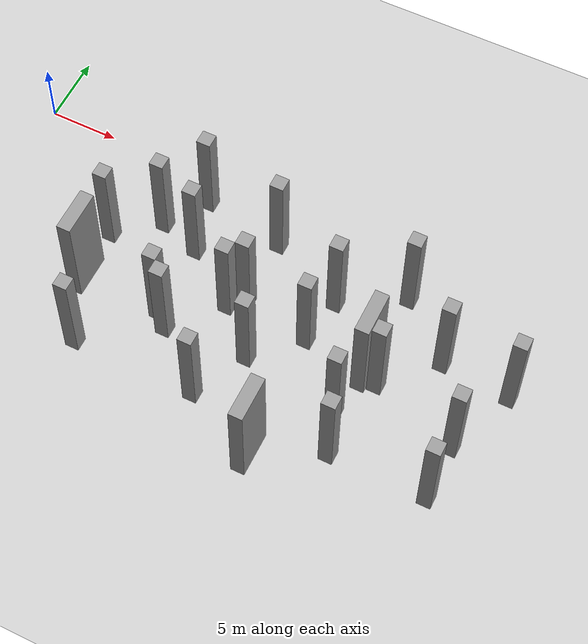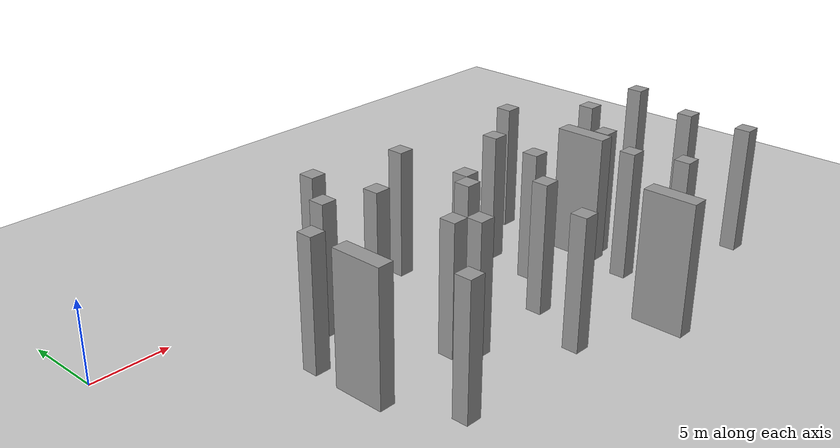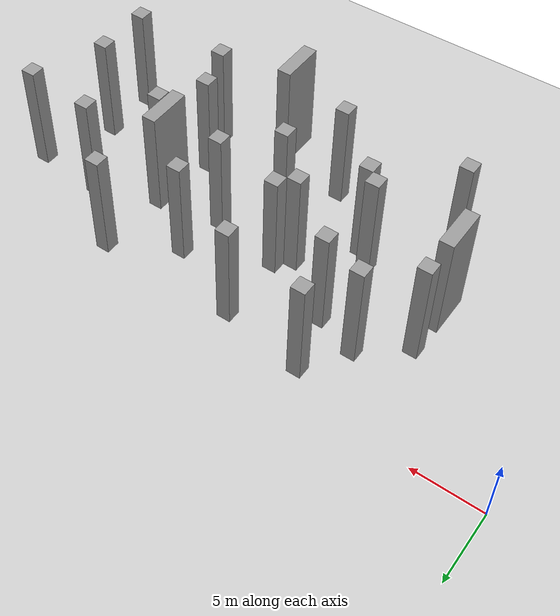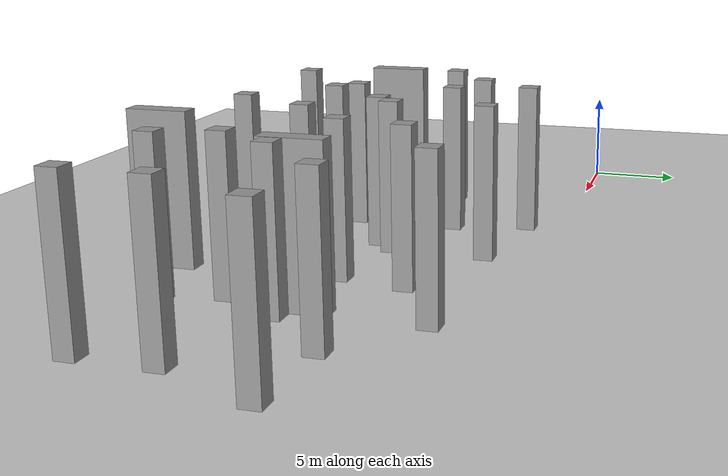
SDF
<sdf version="1.7">
 <world name="default">
  <model name="ground_plane">
   <static>1</static>
   <link name="link">
    <collision name="collision">
     <geometry><plane><normal>0 0 1</normal><size>100 100</size></plane></geometry>
     <surface>
      <contact><collide_bitmask>65535</collide_bitmask></contact>
      <friction><ode><mu>100</mu><mu2>50</mu2></ode></friction>
     </surface>
    </collision>
    <visual name="visual">
     <cast_shadows>0</cast_shadows>
     <geometry><plane><normal>0 0 1</normal><size>100 100</size></plane></geometry>
     <material>
      <script><uri>file://media/materials/scripts/gazebo.material</uri><name>Gazebo/Grey</name></script>
     </material>
    </visual>
   </link>
  </model>
  <model name="unit_box_static_clone_30">
   <link name="link">
    <inertial>
     <mass>1</mass>
     <inertia>
      <ixx>0.166667</ixx>
      <ixy>0</ixy>
      <ixz>0</ixz>
      <iyy>0.166667</iyy>
      <iyz>0</iyz>
      <izz>0.166667</izz>
     </inertia>
    </inertial>
    <visual name="visual">
     <geometry><box><size>1 1 8.00001</size></box></geometry>
     <material>
      <script><name>Gazebo/Grey</name><uri>file://media/materials/scripts/gazebo.material</uri></script>
      <shader type="pixel"/>
     </material>
    </visual>
    <collision name="collision">
     <geometry><box><size>1 1 8.00001</size></box></geometry>
     <surface>
      <friction>
       <ode><mu>1</mu><mu2>1</mu2><fdir1>0 0 0</fdir1><slip1>0</slip1><slip2>0</slip2></ode>
       <torsional>
        <coefficient>1</coefficient>
        <patch_radius>0</patch_radius>
        <surface_radius>0</surface_radius>
        <use_patch_radius>1</use_patch_radius>
        <ode><slip>0</slip></ode>
       </torsional>
      </friction>
      <bounce><restitution_coefficient>0</restitution_coefficient><threshold>1e+06</threshold></bounce>
      <contact>
       <collide_without_contact>0</collide_without_contact>
       <collide_without_contact_bitmask>1</collide_without_contact_bitmask>
       <collide_bitmask>1</collide_bitmask>
       <ode>
        <soft_cfm>0</soft_cfm>
        <soft_erp>0.2</soft_erp>
        <kp>1e+13</kp>
        <kd>1</kd>
        <max_vel>0.01</max_vel>
        <min_depth>0</min_depth>
       </ode>
       <bullet>
        <split_impulse>1</split_impulse>
        <split_impulse_penetration_threshold>-0.01</split_impulse_penetration_threshold>
        <soft_cfm>0</soft_cfm>
        <soft_erp>0.2</soft_erp>
        <kp>1e+13</kp>
        <kd>1</kd>
       </bullet>
      </contact>
     </surface>
    </collision>
   </link>
   <static>1</static>
   <pose>9 -7.40127 4 0 -0 0</pose>
  </model>
  <model name="unit_box_static_clone_42">
   <link name="link">
    <inertial>
     <mass>1</mass>
     <inertia>
      <ixx>0.166667</ixx>
      <ixy>0</ixy>
      <ixz>0</ixz>
      <iyy>0.166667</iyy>
      <iyz>0</iyz>
      <izz>0.166667</izz>
     </inertia>
    </inertial>
    <visual name="visual">
     <geometry><box><size>1 1 8.00001</size></box></geometry>
     <material>
      <script><name>Gazebo/Grey</name><uri>file://media/materials/scripts/gazebo.material</uri></script>
      <shader type="pixel"/>
     </material>
    </visual>
    <collision name="collision">
     <geometry><box><size>1 1 8.00001</size></box></geometry>
     <surface>
      <friction>
       <ode><mu>1</mu><mu2>1</mu2><fdir1>0 0 0</fdir1><slip1>0</slip1><slip2>0</slip2></ode>
       <torsional>
        <coefficient>1</coefficient>
        <patch_radius>0</patch_radius>
        <surface_radius>0</surface_radius>
        <use_patch_radius>1</use_patch_radius>
        <ode><slip>0</slip></ode>
       </torsional>
      </friction>
      <bounce><restitution_coefficient>0</restitution_coefficient><threshold>1e+06</threshold></bounce>
      <contact>
       <collide_without_contact>0</collide_without_contact>
       <collide_without_contact_bitmask>1</collide_without_contact_bitmask>
       <collide_bitmask>1</collide_bitmask>
       <ode>
        <soft_cfm>0</soft_cfm>
        <soft_erp>0.2</soft_erp>
        <kp>1e+13</kp>
        <kd>1</kd>
        <max_vel>0.01</max_vel>
        <min_depth>0</min_depth>
       </ode>
       <bullet>
        <split_impulse>1</split_impulse>
        <split_impulse_penetration_threshold>-0.01</split_impulse_penetration_threshold>
        <soft_cfm>0</soft_cfm>
        <soft_erp>0.2</soft_erp>
        <kp>1e+13</kp>
        <kd>1</kd>
       </bullet>
      </contact>
     </surface>
    </collision>
   </link>
   <static>1</static>
   <pose>14 -2 4 0 -0 0</pose>
  </model>
  <model name="unit_box_static_clone_44">
   <link name="link">
    <inertial>
     <mass>1</mass>
     <inertia>
      <ixx>0.166667</ixx>
      <ixy>0</ixy>
      <ixz>0</ixz>
      <iyy>0.166667</iyy>
      <iyz>0</iyz>
      <izz>0.166667</izz>
     </inertia>
    </inertial>
    <visual name="visual">
     <geometry><box><size>1 1 8.00001</size></box></geometry>
     <material>
      <script><name>Gazebo/Grey</name><uri>file://media/materials/scripts/gazebo.material</uri></script>
      <shader type="pixel"/>
     </material>
    </visual>
    <collision name="collision">
     <geometry><box><size>1 1 8.00001</size></box></geometry>
     <surface>
      <friction>
       <ode><mu>1</mu><mu2>1</mu2><fdir1>0 0 0</fdir1><slip1>0</slip1><slip2>0</slip2></ode>
       <torsional>
        <coefficient>1</coefficient>
        <patch_radius>0</patch_radius>
        <surface_radius>0</surface_radius>
        <use_patch_radius>1</use_patch_radius>
        <ode><slip>0</slip></ode>
       </torsional>
      </friction>
      <bounce><restitution_coefficient>0</restitution_coefficient><threshold>1e+06</threshold></bounce>
      <contact>
       <collide_without_contact>0</collide_without_contact>
       <collide_without_contact_bitmask>1</collide_without_contact_bitmask>
       <collide_bitmask>1</collide_bitmask>
       <ode>
        <soft_cfm>0</soft_cfm>
        <soft_erp>0.2</soft_erp>
        <kp>1e+13</kp>
        <kd>1</kd>
        <max_vel>0.01</max_vel>
        <min_depth>0</min_depth>
       </ode>
       <bullet>
        <split_impulse>1</split_impulse>
        <split_impulse_penetration_threshold>-0.01</split_impulse_penetration_threshold>
        <soft_cfm>0</soft_cfm>
        <soft_erp>0.2</soft_erp>
        <kp>1e+13</kp>
        <kd>1</kd>
       </bullet>
      </contact>
     </surface>
    </collision>
   </link>
   <static>1</static>
   <pose>20 -3 4 0 -0 0</pose>
  </model>
  <model name="unit_box_static_clone_53">
   <link name="link">
    <inertial>
     <mass>1</mass>
     <inertia>
      <ixx>0.166667</ixx>
      <ixy>0</ixy>
      <ixz>0</ixz>
      <iyy>0.166667</iyy>
      <iyz>0</iyz>
      <izz>0.166667</izz>
     </inertia>
    </inertial>
    <visual name="visual">
     <geometry><box><size>1 1 8.00001</size></box></geometry>
     <material>
      <script><name>Gazebo/Grey</name><uri>file://media/materials/scripts/gazebo.material</uri></script>
      <shader type="pixel"/>
     </material>
    </visual>
    <collision name="collision">
     <geometry><box><size>1 1 8.00001</size></box></geometry>
     <surface>
      <friction>
       <ode><mu>1</mu><mu2>1</mu2><fdir1>0 0 0</fdir1><slip1>0</slip1><slip2>0</slip2></ode>
       <torsional>
        <coefficient>1</coefficient>
        <patch_radius>0</patch_radius>
        <surface_radius>0</surface_radius>
        <use_patch_radius>1</use_patch_radius>
        <ode><slip>0</slip></ode>
       </torsional>
      </friction>
      <bounce><restitution_coefficient>0</restitution_coefficient><threshold>1e+06</threshold></bounce>
      <contact>
       <collide_without_contact>0</collide_without_contact>
       <collide_without_contact_bitmask>1</collide_without_contact_bitmask>
       <collide_bitmask>1</collide_bitmask>
       <ode>
        <soft_cfm>0</soft_cfm>
        <soft_erp>0.2</soft_erp>
        <kp>1e+13</kp>
        <kd>1</kd>
        <max_vel>0.01</max_vel>
        <min_depth>0</min_depth>
       </ode>
       <bullet>
        <split_impulse>1</split_impulse>
        <split_impulse_penetration_threshold>-0.01</split_impulse_penetration_threshold>
        <soft_cfm>0</soft_cfm>
        <soft_erp>0.2</soft_erp>
        <kp>1e+13</kp>
        <kd>1</kd>
       </bullet>
      </contact>
     </surface>
    </collision>
   </link>
   <static>1</static>
   <pose>25.5768 -5.51361 4 0 -0 0</pose>
  </model>
  <model name="unit_box_static_clone_54">
   <link name="link">
    <inertial>
     <mass>1</mass>
     <inertia>
      <ixx>0.166667</ixx>
      <ixy>0</ixy>
      <ixz>0</ixz>
      <iyy>0.166667</iyy>
      <iyz>0</iyz>
      <izz>0.166667</izz>
     </inertia>
    </inertial>
    <visual name="visual">
     <geometry><box><size>1 1 8.00001</size></box></geometry>
     <material>
      <script><name>Gazebo/Grey</name><uri>file://media/materials/scripts/gazebo.material</uri></script>
      <shader type="pixel"/>
     </material>
    </visual>
    <collision name="collision">
     <geometry><box><size>1 1 8.00001</size></box></geometry>
     <surface>
      <friction>
       <ode><mu>1</mu><mu2>1</mu2><fdir1>0 0 0</fdir1><slip1>0</slip1><slip2>0</slip2></ode>
       <torsional>
        <coefficient>1</coefficient>
        <patch_radius>0</patch_radius>
        <surface_radius>0</surface_radius>
        <use_patch_radius>1</use_patch_radius>
        <ode><slip>0</slip></ode>
       </torsional>
      </friction>
      <bounce><restitution_coefficient>0</restitution_coefficient><threshold>1e+06</threshold></bounce>
      <contact>
       <collide_without_contact>0</collide_without_contact>
       <collide_without_contact_bitmask>1</collide_without_contact_bitmask>
       <collide_bitmask>1</collide_bitmask>
       <ode>
        <soft_cfm>0</soft_cfm>
        <soft_erp>0.2</soft_erp>
        <kp>1e+13</kp>
        <kd>1</kd>
        <max_vel>0.01</max_vel>
        <min_depth>0</min_depth>
       </ode>
       <bullet>
        <split_impulse>1</split_impulse>
        <split_impulse_penetration_threshold>-0.01</split_impulse_penetration_threshold>
        <soft_cfm>0</soft_cfm>
        <soft_erp>0.2</soft_erp>
        <kp>1e+13</kp>
        <kd>1</kd>
       </bullet>
      </contact>
     </surface>
    </collision>
   </link>
   <static>1</static>
   <pose>20 -8 4 0 -0 0</pose>
  </model>
  <model name="unit_box_static_clone_55">
   <link name="link">
    <inertial>
     <mass>1</mass>
     <inertia>
      <ixx>0.166667</ixx>
      <ixy>0</ixy>
      <ixz>0</ixz>
      <iyy>0.166667</iyy>
      <iyz>0</iyz>
      <izz>0.166667</izz>
     </inertia>
    </inertial>
    <visual name="visual">
     <geometry><box><size>1 1 8.00001</size></box></geometry>
     <material>
      <script><name>Gazebo/Grey</name><uri>file://media/materials/scripts/gazebo.material</uri></script>
      <shader type="pixel"/>
     </material>
    </visual>
    <collision name="collision">
     <geometry><box><size>1 1 8.00001</size></box></geometry>
     <surface>
      <friction>
       <ode><mu>1</mu><mu2>1</mu2><fdir1>0 0 0</fdir1><slip1>0</slip1><slip2>0</slip2></ode>
       <torsional>
        <coefficient>1</coefficient>
        <patch_radius>0</patch_radius>
        <surface_radius>0</surface_radius>
        <use_patch_radius>1</use_patch_radius>
        <ode><slip>0</slip></ode>
       </torsional>
      </friction>
      <bounce><restitution_coefficient>0</restitution_coefficient><threshold>1e+06</threshold></bounce>
      <contact>
       <collide_without_contact>0</collide_without_contact>
       <collide_without_contact_bitmask>1</collide_without_contact_bitmask>
       <collide_bitmask>1</collide_bitmask>
       <ode>
        <soft_cfm>0</soft_cfm>
        <soft_erp>0.2</soft_erp>
        <kp>1e+13</kp>
        <kd>1</kd>
        <max_vel>0.01</max_vel>
        <min_depth>0</min_depth>
       </ode>
       <bullet>
        <split_impulse>1</split_impulse>
        <split_impulse_penetration_threshold>-0.01</split_impulse_penetration_threshold>
        <soft_cfm>0</soft_cfm>
        <soft_erp>0.2</soft_erp>
        <kp>1e+13</kp>
        <kd>1</kd>
       </bullet>
      </contact>
     </surface>
    </collision>
   </link>
   <static>1</static>
   <pose>12 -5 4 0 -0 0</pose>
  </model>
  <model name="unit_box_static_clone_56">
   <link name="link">
    <inertial>
     <mass>1</mass>
     <inertia>
      <ixx>0.166667</ixx>
      <ixy>0</ixy>
      <ixz>0</ixz>
      <iyy>0.166667</iyy>
      <iyz>0</iyz>
      <izz>0.166667</izz>
     </inertia>
    </inertial>
    <visual name="visual">
     <geometry><box><size>1 1 8.00001</size></box></geometry>
     <material>
      <script><name>Gazebo/Grey</name><uri>file://media/materials/scripts/gazebo.material</uri></script>
      <shader type="pixel"/>
     </material>
    </visual>
    <collision name="collision">
     <geometry><box><size>1 1 8.00001</size></box></geometry>
     <surface>
      <friction>
       <ode><mu>1</mu><mu2>1</mu2><fdir1>0 0 0</fdir1><slip1>0</slip1><slip2>0</slip2></ode>
       <torsional>
        <coefficient>1</coefficient>
        <patch_radius>0</patch_radius>
        <surface_radius>0</surface_radius>
        <use_patch_radius>1</use_patch_radius>
        <ode><slip>0</slip></ode>
       </torsional>
      </friction>
      <bounce><restitution_coefficient>0</restitution_coefficient><threshold>1e+06</threshold></bounce>
      <contact>
       <collide_without_contact>0</collide_without_contact>
       <collide_without_contact_bitmask>1</collide_without_contact_bitmask>
       <collide_bitmask>1</collide_bitmask>
       <ode>
        <soft_cfm>0</soft_cfm>
        <soft_erp>0.2</soft_erp>
        <kp>1e+13</kp>
        <kd>1</kd>
        <max_vel>0.01</max_vel>
        <min_depth>0</min_depth>
       </ode>
       <bullet>
        <split_impulse>1</split_impulse>
        <split_impulse_penetration_threshold>-0.01</split_impulse_penetration_threshold>
        <soft_cfm>0</soft_cfm>
        <soft_erp>0.2</soft_erp>
        <kp>1e+13</kp>
        <kd>1</kd>
       </bullet>
      </contact>
     </surface>
    </collision>
   </link>
   <static>1</static>
   <pose>15 -11.5062 4 0 -0 0</pose>
  </model>
  <model name="unit_box_static_clone_57">
   <link name="link">
    <inertial>
     <mass>1</mass>
     <inertia>
      <ixx>0.166667</ixx>
      <ixy>0</ixy>
      <ixz>0</ixz>
      <iyy>0.166667</iyy>
      <iyz>0</iyz>
      <izz>0.166667</izz>
     </inertia>
    </inertial>
    <visual name="visual">
     <geometry><box><size>1 1 8.00001</size></box></geometry>
     <material>
      <script><name>Gazebo/Grey</name><uri>file://media/materials/scripts/gazebo.material</uri></script>
      <shader type="pixel"/>
     </material>
    </visual>
    <collision name="collision">
     <geometry><box><size>1 1 8.00001</size></box></geometry>
     <surface>
      <friction>
       <ode><mu>1</mu><mu2>1</mu2><fdir1>0 0 0</fdir1><slip1>0</slip1><slip2>0</slip2></ode>
       <torsional>
        <coefficient>1</coefficient>
        <patch_radius>0</patch_radius>
        <surface_radius>0</surface_radius>
        <use_patch_radius>1</use_patch_radius>
        <ode><slip>0</slip></ode>
       </torsional>
      </friction>
      <bounce><restitution_coefficient>0</restitution_coefficient><threshold>1e+06</threshold></bounce>
      <contact>
       <collide_without_contact>0</collide_without_contact>
       <collide_without_contact_bitmask>1</collide_without_contact_bitmask>
       <collide_bitmask>1</collide_bitmask>
       <ode>
        <soft_cfm>0</soft_cfm>
        <soft_erp>0.2</soft_erp>
        <kp>1e+13</kp>
        <kd>1</kd>
        <max_vel>0.01</max_vel>
        <min_depth>0</min_depth>
       </ode>
       <bullet>
        <split_impulse>1</split_impulse>
        <split_impulse_penetration_threshold>-0.01</split_impulse_penetration_threshold>
        <soft_cfm>0</soft_cfm>
        <soft_erp>0.2</soft_erp>
        <kp>1e+13</kp>
        <kd>1</kd>
       </bullet>
      </contact>
     </surface>
    </collision>
   </link>
   <static>1</static>
   <pose>25 -9 4 0 -0 0</pose>
  </model>
  <model name="unit_box_static_clone_58">
   <link name="link">
    <inertial>
     <mass>1</mass>
     <inertia>
      <ixx>0.166667</ixx>
      <ixy>0</ixy>
      <ixz>0</ixz>
      <iyy>0.166667</iyy>
      <iyz>0</iyz>
      <izz>0.166667</izz>
     </inertia>
    </inertial>
    <visual name="visual">
     <geometry><box><size>1 1 8.00001</size></box></geometry>
     <material>
      <script><name>Gazebo/Grey</name><uri>file://media/materials/scripts/gazebo.material</uri></script>
      <shader type="pixel"/>
     </material>
    </visual>
    <collision name="collision">
     <geometry><box><size>1 1 8.00001</size></box></geometry>
     <surface>
      <friction>
       <ode><mu>1</mu><mu2>1</mu2><fdir1>0 0 0</fdir1><slip1>0</slip1><slip2>0</slip2></ode>
       <torsional>
        <coefficient>1</coefficient>
        <patch_radius>0</patch_radius>
        <surface_radius>0</surface_radius>
        <use_patch_radius>1</use_patch_radius>
        <ode><slip>0</slip></ode>
       </torsional>
      </friction>
      <bounce><restitution_coefficient>0</restitution_coefficient><threshold>1e+06</threshold></bounce>
      <contact>
       <collide_without_contact>0</collide_without_contact>
       <collide_without_contact_bitmask>1</collide_without_contact_bitmask>
       <collide_bitmask>1</collide_bitmask>
       <ode>
        <soft_cfm>0</soft_cfm>
        <soft_erp>0.2</soft_erp>
        <kp>1e+13</kp>
        <kd>1</kd>
        <max_vel>0.01</max_vel>
        <min_depth>0</min_depth>
       </ode>
       <bullet>
        <split_impulse>1</split_impulse>
        <split_impulse_penetration_threshold>-0.01</split_impulse_penetration_threshold>
        <soft_cfm>0</soft_cfm>
        <soft_erp>0.2</soft_erp>
        <kp>1e+13</kp>
        <kd>1</kd>
       </bullet>
      </contact>
     </surface>
    </collision>
   </link>
   <static>1</static>
   <pose>29 -13 4 0 -0 0</pose>
  </model>
  <model name="unit_box_static_clone_59">
   <link name="link">
    <inertial>
     <mass>1</mass>
     <inertia>
      <ixx>0.166667</ixx>
      <ixy>0</ixy>
      <ixz>0</ixz>
      <iyy>0.166667</iyy>
      <iyz>0</iyz>
      <izz>0.166667</izz>
     </inertia>
    </inertial>
    <visual name="visual">
     <geometry><box><size>1 1 8.00001</size></box></geometry>
     <material>
      <script><name>Gazebo/Grey</name><uri>file://media/materials/scripts/gazebo.material</uri></script>
      <shader type="pixel"/>
     </material>
    </visual>
    <collision name="collision">
     <geometry><box><size>1 1 8.00001</size></box></geometry>
     <surface>
      <friction>
       <ode><mu>1</mu><mu2>1</mu2><fdir1>0 0 0</fdir1><slip1>0</slip1><slip2>0</slip2></ode>
       <torsional>
        <coefficient>1</coefficient>
        <patch_radius>0</patch_radius>
        <surface_radius>0</surface_radius>
        <use_patch_radius>1</use_patch_radius>
        <ode><slip>0</slip></ode>
       </torsional>
      </friction>
      <bounce><restitution_coefficient>0</restitution_coefficient><threshold>1e+06</threshold></bounce>
      <contact>
       <collide_without_contact>0</collide_without_contact>
       <collide_without_contact_bitmask>1</collide_without_contact_bitmask>
       <collide_bitmask>1</collide_bitmask>
       <ode>
        <soft_cfm>0</soft_cfm>
        <soft_erp>0.2</soft_erp>
        <kp>1e+13</kp>
        <kd>1</kd>
        <max_vel>0.01</max_vel>
        <min_depth>0</min_depth>
       </ode>
       <bullet>
        <split_impulse>1</split_impulse>
        <split_impulse_penetration_threshold>-0.01</split_impulse_penetration_threshold>
        <soft_cfm>0</soft_cfm>
        <soft_erp>0.2</soft_erp>
        <kp>1e+13</kp>
        <kd>1</kd>
       </bullet>
      </contact>
     </surface>
    </collision>
   </link>
   <static>1</static>
   <pose>30.7 -10 4 0 -0 0</pose>
  </model>
  <model name="unit_box_static_clone_60">
   <link name="link">
    <inertial>
     <mass>1</mass>
     <inertia>
      <ixx>0.166667</ixx>
      <ixy>0</ixy>
      <ixz>0</ixz>
      <iyy>0.166667</iyy>
      <iyz>0</iyz>
      <izz>0.166667</izz>
     </inertia>
    </inertial>
    <visual name="visual">
     <geometry><box><size>1 1 8.00001</size></box></geometry>
     <material>
      <script><name>Gazebo/Grey</name><uri>file://media/materials/scripts/gazebo.material</uri></script>
      <shader type="pixel"/>
     </material>
    </visual>
    <collision name="collision">
     <geometry><box><size>1 1 8.00001</size></box></geometry>
     <surface>
      <friction>
       <ode><mu>1</mu><mu2>1</mu2><fdir1>0 0 0</fdir1><slip1>0</slip1><slip2>0</slip2></ode>
       <torsional>
        <coefficient>1</coefficient>
        <patch_radius>0</patch_radius>
        <surface_radius>0</surface_radius>
        <use_patch_radius>1</use_patch_radius>
        <ode><slip>0</slip></ode>
       </torsional>
      </friction>
      <bounce><restitution_coefficient>0</restitution_coefficient><threshold>1e+06</threshold></bounce>
      <contact>
       <collide_without_contact>0</collide_without_contact>
       <collide_without_contact_bitmask>1</collide_without_contact_bitmask>
       <collide_bitmask>1</collide_bitmask>
       <ode>
        <soft_cfm>0</soft_cfm>
        <soft_erp>0.2</soft_erp>
        <kp>1e+13</kp>
        <kd>1</kd>
        <max_vel>0.01</max_vel>
        <min_depth>0</min_depth>
       </ode>
       <bullet>
        <split_impulse>1</split_impulse>
        <split_impulse_penetration_threshold>-0.01</split_impulse_penetration_threshold>
        <soft_cfm>0</soft_cfm>
        <soft_erp>0.2</soft_erp>
        <kp>1e+13</kp>
        <kd>1</kd>
       </bullet>
      </contact>
     </surface>
    </collision>
   </link>
   <static>1</static>
   <pose>20 -16 4 0 -0 0</pose>
  </model>
  <model name="unit_box_static_clone_61">
   <link name="link">
    <inertial>
     <mass>1</mass>
     <inertia>
      <ixx>0.166667</ixx>
      <ixy>0</ixy>
      <ixz>0</ixz>
      <iyy>0.166667</iyy>
      <iyz>0</iyz>
      <izz>0.166667</izz>
     </inertia>
    </inertial>
    <visual name="visual">
     <geometry><box><size>1 1 8.00001</size></box></geometry>
     <material>
      <script><name>Gazebo/Grey</name><uri>file://media/materials/scripts/gazebo.material</uri></script>
      <shader type="pixel"/>
     </material>
    </visual>
    <collision name="collision">
     <geometry><box><size>1 1 8.00001</size></box></geometry>
     <surface>
      <friction>
       <ode><mu>1</mu><mu2>1</mu2><fdir1>0 0 0</fdir1><slip1>0</slip1><slip2>0</slip2></ode>
       <torsional>
        <coefficient>1</coefficient>
        <patch_radius>0</patch_radius>
        <surface_radius>0</surface_radius>
        <use_patch_radius>1</use_patch_radius>
        <ode><slip>0</slip></ode>
       </torsional>
      </friction>
      <bounce><restitution_coefficient>0</restitution_coefficient><threshold>1e+06</threshold></bounce>
      <contact>
       <collide_without_contact>0</collide_without_contact>
       <collide_without_contact_bitmask>1</collide_without_contact_bitmask>
       <collide_bitmask>1</collide_bitmask>
       <ode>
        <soft_cfm>0</soft_cfm>
        <soft_erp>0.2</soft_erp>
        <kp>1e+13</kp>
        <kd>1</kd>
        <max_vel>0.01</max_vel>
        <min_depth>0</min_depth>
       </ode>
       <bullet>
        <split_impulse>1</split_impulse>
        <split_impulse_penetration_threshold>-0.01</split_impulse_penetration_threshold>
        <soft_cfm>0</soft_cfm>
        <soft_erp>0.2</soft_erp>
        <kp>1e+13</kp>
        <kd>1</kd>
       </bullet>
      </contact>
     </surface>
    </collision>
   </link>
   <static>1</static>
   <pose>11 -16 4 0 -0 0</pose>
  </model>
  <model name="unit_box_static_clone_37_clone_2">
   <link name="link">
    <inertial>
     <mass>1</mass>
     <inertia>
      <ixx>0.166667</ixx>
      <ixy>0</ixy>
      <ixz>0</ixz>
      <iyy>0.166667</iyy>
      <iyz>0</iyz>
      <izz>0.166667</izz>
     </inertia>
    </inertial>
    <visual name="visual">
     <geometry><box><size>1 3.16921 8.00001</size></box></geometry>
     <material>
      <script><name>Gazebo/Grey</name><uri>file://media/materials/scripts/gazebo.material</uri></script>
      <shader type="pixel"/>
     </material>
    </visual>
    <collision name="collision">
     <geometry><box><size>1 3.16921 8.00001</size></box></geometry>
     <surface>
      <friction>
       <ode><mu>1</mu><mu2>1</mu2><fdir1>0 0 0</fdir1><slip1>0</slip1><slip2>0</slip2></ode>
       <torsional>
        <coefficient>1</coefficient>
        <patch_radius>0</patch_radius>
        <surface_radius>0</surface_radius>
        <use_patch_radius>1</use_patch_radius>
        <ode><slip>0</slip></ode>
       </torsional>
      </friction>
      <bounce><restitution_coefficient>0</restitution_coefficient><threshold>1e+06</threshold></bounce>
      <contact>
       <collide_without_contact>0</collide_without_contact>
       <collide_without_contact_bitmask>1</collide_without_contact_bitmask>
       <collide_bitmask>1</collide_bitmask>
       <ode>
        <soft_cfm>0</soft_cfm>
        <soft_erp>0.2</soft_erp>
        <kp>1e+13</kp>
        <kd>1</kd>
        <max_vel>0.01</max_vel>
        <min_depth>0</min_depth>
       </ode>
       <bullet>
        <split_impulse>1</split_impulse>
        <split_impulse_penetration_threshold>-0.01</split_impulse_penetration_threshold>
        <soft_cfm>0</soft_cfm>
        <soft_erp>0.2</soft_erp>
        <kp>1e+13</kp>
        <kd>1</kd>
       </bullet>
      </contact>
     </surface>
    </collision>
   </link>
   <static>1</static>
   <pose>9 -11 4 0 -0 0</pose>
  </model>
  <model name="unit_box_static_clone_37_clone_10">
   <link name="link">
    <inertial>
     <mass>1</mass>
     <inertia>
      <ixx>0.166667</ixx>
      <ixy>0</ixy>
      <ixz>0</ixz>
      <iyy>0.166667</iyy>
      <iyz>0</iyz>
      <izz>0.166667</izz>
     </inertia>
    </inertial>
    <visual name="visual">
     <geometry><box><size>1 3.16921 8.00001</size></box></geometry>
     <material>
      <script><name>Gazebo/Grey</name><uri>file://media/materials/scripts/gazebo.material</uri></script>
      <shader type="pixel"/>
     </material>
    </visual>
    <collision name="collision">
     <geometry><box><size>1 3.16921 8.00001</size></box></geometry>
     <surface>
      <friction>
       <ode><mu>1</mu><mu2>1</mu2><fdir1>0 0 0</fdir1><slip1>0</slip1><slip2>0</slip2></ode>
       <torsional>
        <coefficient>1</coefficient>
        <patch_radius>0</patch_radius>
        <surface_radius>0</surface_radius>
        <use_patch_radius>1</use_patch_radius>
        <ode><slip>0</slip></ode>
       </torsional>
      </friction>
      <bounce><restitution_coefficient>0</restitution_coefficient><threshold>1e+06</threshold></bounce>
      <contact>
       <collide_without_contact>0</collide_without_contact>
       <collide_without_contact_bitmask>1</collide_without_contact_bitmask>
       <collide_bitmask>1</collide_bitmask>
       <ode>
        <soft_cfm>0</soft_cfm>
        <soft_erp>0.2</soft_erp>
        <kp>1e+13</kp>
        <kd>1</kd>
        <max_vel>0.01</max_vel>
        <min_depth>0</min_depth>
       </ode>
       <bullet>
        <split_impulse>1</split_impulse>
        <split_impulse_penetration_threshold>-0.01</split_impulse_penetration_threshold>
        <soft_cfm>0</soft_cfm>
        <soft_erp>0.2</soft_erp>
        <kp>1e+13</kp>
        <kd>1</kd>
       </bullet>
      </contact>
     </surface>
    </collision>
   </link>
   <static>1</static>
   <pose>29.6427 -9.24853 4 0 -0 0</pose>
  </model>
  <model name="unit_box_static_clone_37_clone_clone">
   <link name="link">
    <inertial>
     <mass>1</mass>
     <inertia>
      <ixx>0.166667</ixx>
      <ixy>0</ixy>
      <ixz>0</ixz>
      <iyy>0.166667</iyy>
      <iyz>0</iyz>
      <izz>0.166667</izz>
     </inertia>
    </inertial>
    <visual name="visual">
     <geometry><box><size>1 3.16921 8.00001</size></box></geometry>
     <material>
      <script><name>Gazebo/Grey</name><uri>file://media/materials/scripts/gazebo.material</uri></script>
      <shader type="pixel"/>
     </material>
    </visual>
    <collision name="collision">
     <geometry><box><size>1 3.16921 8.00001</size></box></geometry>
     <surface>
      <friction>
       <ode><mu>1</mu><mu2>1</mu2><fdir1>0 0 0</fdir1><slip1>0</slip1><slip2>0</slip2></ode>
       <torsional>
        <coefficient>1</coefficient>
        <patch_radius>0</patch_radius>
        <surface_radius>0</surface_radius>
        <use_patch_radius>1</use_patch_radius>
        <ode><slip>0</slip></ode>
       </torsional>
      </friction>
      <bounce><restitution_coefficient>0</restitution_coefficient><threshold>1e+06</threshold></bounce>
      <contact>
       <collide_without_contact>0</collide_without_contact>
       <collide_without_contact_bitmask>1</collide_without_contact_bitmask>
       <collide_bitmask>1</collide_bitmask>
       <ode>
        <soft_cfm>0</soft_cfm>
        <soft_erp>0.2</soft_erp>
        <kp>1e+13</kp>
        <kd>1</kd>
        <max_vel>0.01</max_vel>
        <min_depth>0</min_depth>
       </ode>
       <bullet>
        <split_impulse>1</split_impulse>
        <split_impulse_penetration_threshold>-0.01</split_impulse_penetration_threshold>
        <soft_cfm>0</soft_cfm>
        <soft_erp>0.2</soft_erp>
        <kp>1e+13</kp>
        <kd>1</kd>
       </bullet>
      </contact>
     </surface>
    </collision>
   </link>
   <static>1</static>
   <pose>25.2419 -18.1013 4 0 -0 0</pose>
  </model>
  <model name="unit_box_static_clone_35_clone_14">
   <link name="link">
    <inertial>
     <mass>1</mass>
     <inertia>
      <ixx>0.166667</ixx>
      <ixy>0</ixy>
      <ixz>0</ixz>
      <iyy>0.166667</iyy>
      <iyz>0</iyz>
      <izz>0.166667</izz>
     </inertia>
    </inertial>
    <visual name="visual">
     <geometry><box><size>1 1 8.00001</size></box></geometry>
     <material>
      <script><name>Gazebo/Grey</name><uri>file://media/materials/scripts/gazebo.material</uri></script>
      <shader type="pixel"/>
     </material>
    </visual>
    <collision name="collision">
     <geometry><box><size>1 1 8.00001</size></box></geometry>
     <surface>
      <friction>
       <ode><mu>1</mu><mu2>1</mu2><fdir1>0 0 0</fdir1><slip1>0</slip1><slip2>0</slip2></ode>
       <torsional>
        <coefficient>1</coefficient>
        <patch_radius>0</patch_radius>
        <surface_radius>0</surface_radius>
        <use_patch_radius>1</use_patch_radius>
        <ode><slip>0</slip></ode>
       </torsional>
      </friction>
      <bounce><restitution_coefficient>0</restitution_coefficient><threshold>1e+06</threshold></bounce>
      <contact>
       <collide_without_contact>0</collide_without_contact>
       <collide_without_contact_bitmask>1</collide_without_contact_bitmask>
       <collide_bitmask>1</collide_bitmask>
       <ode>
        <soft_cfm>0</soft_cfm>
        <soft_erp>0.2</soft_erp>
        <kp>1e+13</kp>
        <kd>1</kd>
        <max_vel>0.01</max_vel>
        <min_depth>0</min_depth>
       </ode>
       <bullet>
        <split_impulse>1</split_impulse>
        <split_impulse_penetration_threshold>-0.01</split_impulse_penetration_threshold>
        <soft_cfm>0</soft_cfm>
        <soft_erp>0.2</soft_erp>
        <kp>1e+13</kp>
        <kd>1</kd>
       </bullet>
      </contact>
     </surface>
    </collision>
   </link>
   <static>1</static>
   <pose>39 -7 4 0 -0 0</pose>
  </model>
  <model name="unit_box_static_clone_35_clone_15">
   <link name="link">
    <inertial>
     <mass>1</mass>
     <inertia>
      <ixx>0.166667</ixx>
      <ixy>0</ixy>
      <ixz>0</ixz>
      <iyy>0.166667</iyy>
      <iyz>0</iyz>
      <izz>0.166667</izz>
     </inertia>
    </inertial>
    <visual name="visual">
     <geometry><box><size>1 1 8.00001</size></box></geometry>
     <material>
      <script><name>Gazebo/Grey</name><uri>file://media/materials/scripts/gazebo.material</uri></script>
      <shader type="pixel"/>
     </material>
    </visual>
    <collision name="collision">
     <geometry><box><size>1 1 8.00001</size></box></geometry>
     <surface>
      <friction>
       <ode><mu>1</mu><mu2>1</mu2><fdir1>0 0 0</fdir1><slip1>0</slip1><slip2>0</slip2></ode>
       <torsional>
        <coefficient>1</coefficient>
        <patch_radius>0</patch_radius>
        <surface_radius>0</surface_radius>
        <use_patch_radius>1</use_patch_radius>
        <ode><slip>0</slip></ode>
       </torsional>
      </friction>
      <bounce><restitution_coefficient>0</restitution_coefficient><threshold>1e+06</threshold></bounce>
      <contact>
       <collide_without_contact>0</collide_without_contact>
       <collide_without_contact_bitmask>1</collide_without_contact_bitmask>
       <collide_bitmask>1</collide_bitmask>
       <ode>
        <soft_cfm>0</soft_cfm>
        <soft_erp>0.2</soft_erp>
        <kp>1e+13</kp>
        <kd>1</kd>
        <max_vel>0.01</max_vel>
        <min_depth>0</min_depth>
       </ode>
       <bullet>
        <split_impulse>1</split_impulse>
        <split_impulse_penetration_threshold>-0.01</split_impulse_penetration_threshold>
        <soft_cfm>0</soft_cfm>
        <soft_erp>0.2</soft_erp>
        <kp>1e+13</kp>
        <kd>1</kd>
       </bullet>
      </contact>
     </surface>
    </collision>
   </link>
   <static>1</static>
   <pose>34 -6.5832 4 0 -0 0</pose>
  </model>
  <model name="unit_box_static_clone_35_clone_17">
   <link name="link">
    <inertial>
     <mass>1</mass>
     <inertia>
      <ixx>0.166667</ixx>
      <ixy>0</ixy>
      <ixz>0</ixz>
      <iyy>0.166667</iyy>
      <iyz>0</iyz>
      <izz>0.166667</izz>
     </inertia>
    </inertial>
    <visual name="visual">
     <geometry><box><size>1 1 8.00001</size></box></geometry>
     <material>
      <script><name>Gazebo/Grey</name><uri>file://media/materials/scripts/gazebo.material</uri></script>
      <shader type="pixel"/>
     </material>
    </visual>
    <collision name="collision">
     <geometry><box><size>1 1 8.00001</size></box></geometry>
     <surface>
      <friction>
       <ode><mu>1</mu><mu2>1</mu2><fdir1>0 0 0</fdir1><slip1>0</slip1><slip2>0</slip2></ode>
       <torsional>
        <coefficient>1</coefficient>
        <patch_radius>0</patch_radius>
        <surface_radius>0</surface_radius>
        <use_patch_radius>1</use_patch_radius>
        <ode><slip>0</slip></ode>
       </torsional>
      </friction>
      <bounce><restitution_coefficient>0</restitution_coefficient><threshold>1e+06</threshold></bounce>
      <contact>
       <collide_without_contact>0</collide_without_contact>
       <collide_without_contact_bitmask>1</collide_without_contact_bitmask>
       <collide_bitmask>1</collide_bitmask>
       <ode>
        <soft_cfm>0</soft_cfm>
        <soft_erp>0.2</soft_erp>
        <kp>1e+13</kp>
        <kd>1</kd>
        <max_vel>0.01</max_vel>
        <min_depth>0</min_depth>
       </ode>
       <bullet>
        <split_impulse>1</split_impulse>
        <split_impulse_penetration_threshold>-0.01</split_impulse_penetration_threshold>
        <soft_cfm>0</soft_cfm>
        <soft_erp>0.2</soft_erp>
        <kp>1e+13</kp>
        <kd>1</kd>
       </bullet>
      </contact>
     </surface>
    </collision>
   </link>
   <static>1</static>
   <pose>37 -12 4 0 -0 0</pose>
  </model>
  <model name="unit_box_static_clone_35_clone_18">
   <link name="link">
    <inertial>
     <mass>1</mass>
     <inertia>
      <ixx>0.166667</ixx>
      <ixy>0</ixy>
      <ixz>0</ixz>
      <iyy>0.166667</iyy>
      <iyz>0</iyz>
      <izz>0.166667</izz>
     </inertia>
    </inertial>
    <visual name="visual">
     <geometry><box><size>1 1 8.00001</size></box></geometry>
     <material>
      <script><name>Gazebo/Grey</name><uri>file://media/materials/scripts/gazebo.material</uri></script>
      <shader type="pixel"/>
     </material>
    </visual>
    <collision name="collision">
     <geometry><box><size>1 1 8.00001</size></box></geometry>
     <surface>
      <friction>
       <ode><mu>1</mu><mu2>1</mu2><fdir1>0 0 0</fdir1><slip1>0</slip1><slip2>0</slip2></ode>
       <torsional>
        <coefficient>1</coefficient>
        <patch_radius>0</patch_radius>
        <surface_radius>0</surface_radius>
        <use_patch_radius>1</use_patch_radius>
        <ode><slip>0</slip></ode>
       </torsional>
      </friction>
      <bounce><restitution_coefficient>0</restitution_coefficient><threshold>1e+06</threshold></bounce>
      <contact>
       <collide_without_contact>0</collide_without_contact>
       <collide_without_contact_bitmask>1</collide_without_contact_bitmask>
       <collide_bitmask>1</collide_bitmask>
       <ode>
        <soft_cfm>0</soft_cfm>
        <soft_erp>0.2</soft_erp>
        <kp>1e+13</kp>
        <kd>1</kd>
        <max_vel>0.01</max_vel>
        <min_depth>0</min_depth>
       </ode>
       <bullet>
        <split_impulse>1</split_impulse>
        <split_impulse_penetration_threshold>-0.01</split_impulse_penetration_threshold>
        <soft_cfm>0</soft_cfm>
        <soft_erp>0.2</soft_erp>
        <kp>1e+13</kp>
        <kd>1</kd>
       </bullet>
      </contact>
     </surface>
    </collision>
   </link>
   <static>1</static>
   <pose>30 -16 4 0 -0 0</pose>
  </model>
  <model name="unit_box_static_clone_35_clone_19">
   <link name="link">
    <inertial>
     <mass>1</mass>
     <inertia>
      <ixx>0.166667</ixx>
      <ixy>0</ixy>
      <ixz>0</ixz>
      <iyy>0.166667</iyy>
      <iyz>0</iyz>
      <izz>0.166667</izz>
     </inertia>
    </inertial>
    <visual name="visual">
     <geometry><box><size>1 1 8.00001</size></box></geometry>
     <material>
      <script><name>Gazebo/Grey</name><uri>file://media/materials/scripts/gazebo.material</uri></script>
      <shader type="pixel"/>
     </material>
    </visual>
    <collision name="collision">
     <geometry><box><size>1 1 8.00001</size></box></geometry>
     <surface>
      <friction>
       <ode><mu>1</mu><mu2>1</mu2><fdir1>0 0 0</fdir1><slip1>0</slip1><slip2>0</slip2></ode>
       <torsional>
        <coefficient>1</coefficient>
        <patch_radius>0</patch_radius>
        <surface_radius>0</surface_radius>
        <use_patch_radius>1</use_patch_radius>
        <ode><slip>0</slip></ode>
       </torsional>
      </friction>
      <bounce><restitution_coefficient>0</restitution_coefficient><threshold>1e+06</threshold></bounce>
      <contact>
       <collide_without_contact>0</collide_without_contact>
       <collide_without_contact_bitmask>1</collide_without_contact_bitmask>
       <collide_bitmask>1</collide_bitmask>
       <ode>
        <soft_cfm>0</soft_cfm>
        <soft_erp>0.2</soft_erp>
        <kp>1e+13</kp>
        <kd>1</kd>
        <max_vel>0.01</max_vel>
        <min_depth>0</min_depth>
       </ode>
       <bullet>
        <split_impulse>1</split_impulse>
        <split_impulse_penetration_threshold>-0.01</split_impulse_penetration_threshold>
        <soft_cfm>0</soft_cfm>
        <soft_erp>0.2</soft_erp>
        <kp>1e+13</kp>
        <kd>1</kd>
       </bullet>
      </contact>
     </surface>
    </collision>
   </link>
   <static>1</static>
   <pose>37 -16 4 0 -0 0</pose>
  </model>
  <model name="unit_box_static_clone_35_clone_20">
   <link name="link">
    <inertial>
     <mass>1</mass>
     <inertia>
      <ixx>0.166667</ixx>
      <ixy>0</ixy>
      <ixz>0</ixz>
      <iyy>0.166667</iyy>
      <iyz>0</iyz>
      <izz>0.166667</izz>
     </inertia>
    </inertial>
    <visual name="visual">
     <geometry><box><size>1 1 8.00001</size></box></geometry>
     <material>
      <script><name>Gazebo/Grey</name><uri>file://media/materials/scripts/gazebo.material</uri></script>
      <shader type="pixel"/>
     </material>
    </visual>
    <collision name="collision">
     <geometry><box><size>1 1 8.00001</size></box></geometry>
     <surface>
      <friction>
       <ode><mu>1</mu><mu2>1</mu2><fdir1>0 0 0</fdir1><slip1>0</slip1><slip2>0</slip2></ode>
       <torsional>
        <coefficient>1</coefficient>
        <patch_radius>0</patch_radius>
        <surface_radius>0</surface_radius>
        <use_patch_radius>1</use_patch_radius>
        <ode><slip>0</slip></ode>
       </torsional>
      </friction>
      <bounce><restitution_coefficient>0</restitution_coefficient><threshold>1e+06</threshold></bounce>
      <contact>
       <collide_without_contact>0</collide_without_contact>
       <collide_without_contact_bitmask>1</collide_without_contact_bitmask>
       <collide_bitmask>1</collide_bitmask>
       <ode>
        <soft_cfm>0</soft_cfm>
        <soft_erp>0.2</soft_erp>
        <kp>1e+13</kp>
        <kd>1</kd>
        <max_vel>0.01</max_vel>
        <min_depth>0</min_depth>
       </ode>
       <bullet>
        <split_impulse>1</split_impulse>
        <split_impulse_penetration_threshold>-0.01</split_impulse_penetration_threshold>
        <soft_cfm>0</soft_cfm>
        <soft_erp>0.2</soft_erp>
        <kp>1e+13</kp>
        <kd>1</kd>
       </bullet>
      </contact>
     </surface>
    </collision>
   </link>
   <static>1</static>
   <pose>30 -3 4 0 -0 0</pose>
  </model>
  <model name="unit_box_static_clone_35_clone_21">
   <link name="link">
    <inertial>
     <mass>1</mass>
     <inertia>
      <ixx>0.166667</ixx>
      <ixy>0</ixy>
      <ixz>0</ixz>
      <iyy>0.166667</iyy>
      <iyz>0</iyz>
      <izz>0.166667</izz>
     </inertia>
    </inertial>
    <visual name="visual">
     <geometry><box><size>1 1 8.00001</size></box></geometry>
     <material>
      <script><name>Gazebo/Grey</name><uri>file://media/materials/scripts/gazebo.material</uri></script>
      <shader type="pixel"/>
     </material>
    </visual>
    <collision name="collision">
     <geometry><box><size>1 1 8.00001</size></box></geometry>
     <surface>
      <friction>
       <ode><mu>1</mu><mu2>1</mu2><fdir1>0 0 0</fdir1><slip1>0</slip1><slip2>0</slip2></ode>
       <torsional>
        <coefficient>1</coefficient>
        <patch_radius>0</patch_radius>
        <surface_radius>0</surface_radius>
        <use_patch_radius>1</use_patch_radius>
        <ode><slip>0</slip></ode>
       </torsional>
      </friction>
      <bounce><restitution_coefficient>0</restitution_coefficient><threshold>1e+06</threshold></bounce>
      <contact>
       <collide_without_contact>0</collide_without_contact>
       <collide_without_contact_bitmask>1</collide_without_contact_bitmask>
       <collide_bitmask>1</collide_bitmask>
       <ode>
        <soft_cfm>0</soft_cfm>
        <soft_erp>0.2</soft_erp>
        <kp>1e+13</kp>
        <kd>1</kd>
        <max_vel>0.01</max_vel>
        <min_depth>0</min_depth>
       </ode>
       <bullet>
        <split_impulse>1</split_impulse>
        <split_impulse_penetration_threshold>-0.01</split_impulse_penetration_threshold>
        <soft_cfm>0</soft_cfm>
        <soft_erp>0.2</soft_erp>
        <kp>1e+13</kp>
        <kd>1</kd>
       </bullet>
      </contact>
     </surface>
    </collision>
   </link>
   <static>1</static>
   <pose>22 -12 4 0 -0 0</pose>
  </model>
  <model name="unit_box_static_clone_35_clone_22">
   <link name="link">
    <inertial>
     <mass>1</mass>
     <inertia>
      <ixx>0.166667</ixx>
      <ixy>0</ixy>
      <ixz>0</ixz>
      <iyy>0.166667</iyy>
      <iyz>0</iyz>
      <izz>0.166667</izz>
     </inertia>
    </inertial>
    <visual name="visual">
     <geometry><box><size>1 1 8.00001</size></box></geometry>
     <material>
      <script><name>Gazebo/Grey</name><uri>file://media/materials/scripts/gazebo.material</uri></script>
      <shader type="pixel"/>
     </material>
    </visual>
    <collision name="collision">
     <geometry><box><size>1 1 8.00001</size></box></geometry>
     <surface>
      <friction>
       <ode><mu>1</mu><mu2>1</mu2><fdir1>0 0 0</fdir1><slip1>0</slip1><slip2>0</slip2></ode>
       <torsional>
        <coefficient>1</coefficient>
        <patch_radius>0</patch_radius>
        <surface_radius>0</surface_radius>
        <use_patch_radius>1</use_patch_radius>
        <ode><slip>0</slip></ode>
       </torsional>
      </friction>
      <bounce><restitution_coefficient>0</restitution_coefficient><threshold>1e+06</threshold></bounce>
      <contact>
       <collide_without_contact>0</collide_without_contact>
       <collide_without_contact_bitmask>1</collide_without_contact_bitmask>
       <collide_bitmask>1</collide_bitmask>
       <ode>
        <soft_cfm>0</soft_cfm>
        <soft_erp>0.2</soft_erp>
        <kp>1e+13</kp>
        <kd>1</kd>
        <max_vel>0.01</max_vel>
        <min_depth>0</min_depth>
       </ode>
       <bullet>
        <split_impulse>1</split_impulse>
        <split_impulse_penetration_threshold>-0.01</split_impulse_penetration_threshold>
        <soft_cfm>0</soft_cfm>
        <soft_erp>0.2</soft_erp>
        <kp>1e+13</kp>
        <kd>1</kd>
       </bullet>
      </contact>
     </surface>
    </collision>
   </link>
   <static>1</static>
   <pose>15 -6 4 0 -0 0</pose>
  </model>
  <model name="unit_box_static_clone_35_clone_40">
   <link name="link">
    <inertial>
     <mass>1</mass>
     <inertia>
      <ixx>0.166667</ixx>
      <ixy>0</ixy>
      <ixz>0</ixz>
      <iyy>0.166667</iyy>
      <iyz>0</iyz>
      <izz>0.166667</izz>
     </inertia>
    </inertial>
    <visual name="visual">
     <geometry><box><size>1 1 8.00001</size></box></geometry>
     <material>
      <script><name>Gazebo/Grey</name><uri>file://media/materials/scripts/gazebo.material</uri></script>
      <shader type="pixel"/>
     </material>
    </visual>
    <collision name="collision">
     <geometry><box><size>1 1 8.00001</size></box></geometry>
     <surface>
      <friction>
       <ode><mu>1</mu><mu2>1</mu2><fdir1>0 0 0</fdir1><slip1>0</slip1><slip2>0</slip2></ode>
       <torsional>
        <coefficient>1</coefficient>
        <patch_radius>0</patch_radius>
        <surface_radius>0</surface_radius>
        <use_patch_radius>1</use_patch_radius>
        <ode><slip>0</slip></ode>
       </torsional>
      </friction>
      <bounce><restitution_coefficient>0</restitution_coefficient><threshold>1e+06</threshold></bounce>
      <contact>
       <collide_without_contact>0</collide_without_contact>
       <collide_without_contact_bitmask>1</collide_without_contact_bitmask>
       <collide_bitmask>1</collide_bitmask>
       <ode>
        <soft_cfm>0</soft_cfm>
        <soft_erp>0.2</soft_erp>
        <kp>1e+13</kp>
        <kd>1</kd>
        <max_vel>0.01</max_vel>
        <min_depth>0</min_depth>
       </ode>
       <bullet>
        <split_impulse>1</split_impulse>
        <split_impulse_penetration_threshold>-0.01</split_impulse_penetration_threshold>
        <soft_cfm>0</soft_cfm>
        <soft_erp>0.2</soft_erp>
        <kp>1e+13</kp>
        <kd>1</kd>
       </bullet>
      </contact>
     </surface>
    </collision>
   </link>
   <static>1</static>
   <pose>19 -9 4 0 -0 0</pose>
  </model>
  <model name="unit_box_static_clone_35_clone_41">
   <link name="link">
    <inertial>
     <mass>1</mass>
     <inertia>
      <ixx>0.166667</ixx>
      <ixy>0</ixy>
      <ixz>0</ixz>
      <iyy>0.166667</iyy>
      <iyz>0</iyz>
      <izz>0.166667</izz>
     </inertia>
    </inertial>
    <visual name="visual">
     <geometry><box><size>1 1 8.00001</size></box></geometry>
     <material>
      <script><name>Gazebo/Grey</name><uri>file://media/materials/scripts/gazebo.material</uri></script>
      <shader type="pixel"/>
     </material>
    </visual>
    <collision name="collision">
     <geometry><box><size>1 1 8.00001</size></box></geometry>
     <surface>
      <friction>
       <ode><mu>1</mu><mu2>1</mu2><fdir1>0 0 0</fdir1><slip1>0</slip1><slip2>0</slip2></ode>
       <torsional>
        <coefficient>1</coefficient>
        <patch_radius>0</patch_radius>
        <surface_radius>0</surface_radius>
        <use_patch_radius>1</use_patch_radius>
        <ode><slip>0</slip></ode>
       </torsional>
      </friction>
      <bounce><restitution_coefficient>0</restitution_coefficient><threshold>1e+06</threshold></bounce>
      <contact>
       <collide_without_contact>0</collide_without_contact>
       <collide_without_contact_bitmask>1</collide_without_contact_bitmask>
       <collide_bitmask>1</collide_bitmask>
       <ode>
        <soft_cfm>0</soft_cfm>
        <soft_erp>0.2</soft_erp>
        <kp>1e+13</kp>
        <kd>1</kd>
        <max_vel>0.01</max_vel>
        <min_depth>0</min_depth>
       </ode>
       <bullet>
        <split_impulse>1</split_impulse>
        <split_impulse_penetration_threshold>-0.01</split_impulse_penetration_threshold>
        <soft_cfm>0</soft_cfm>
        <soft_erp>0.2</soft_erp>
        <kp>1e+13</kp>
        <kd>1</kd>
       </bullet>
      </contact>
     </surface>
    </collision>
   </link>
   <static>1</static>
   <pose>16 -12.4444 4 0 -0 0</pose>
  </model>
 </world>
</sdf>
